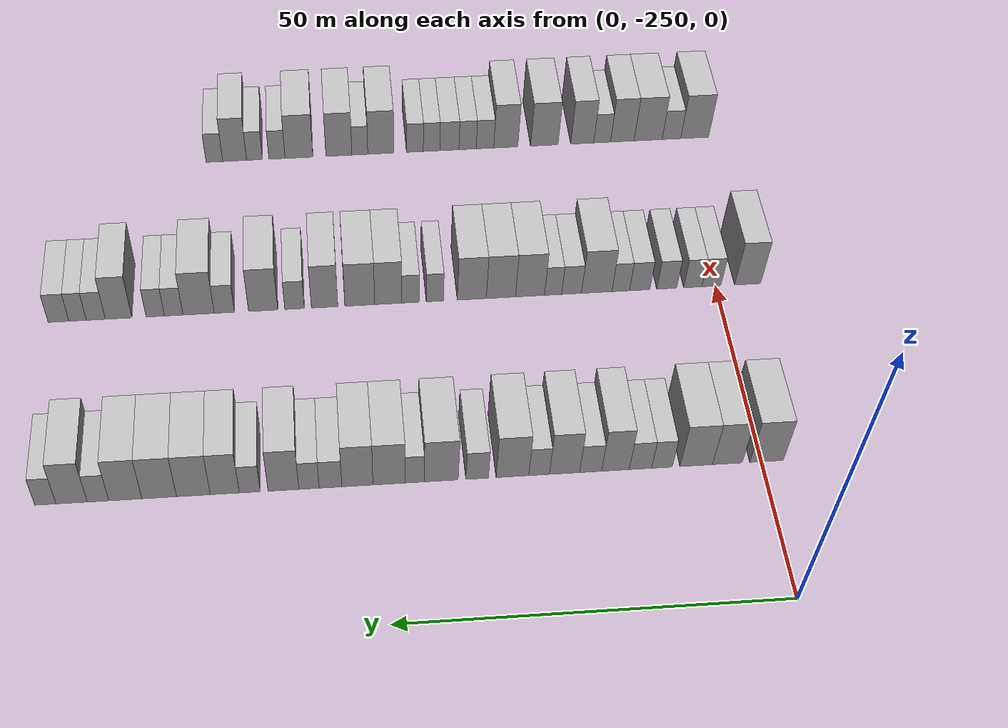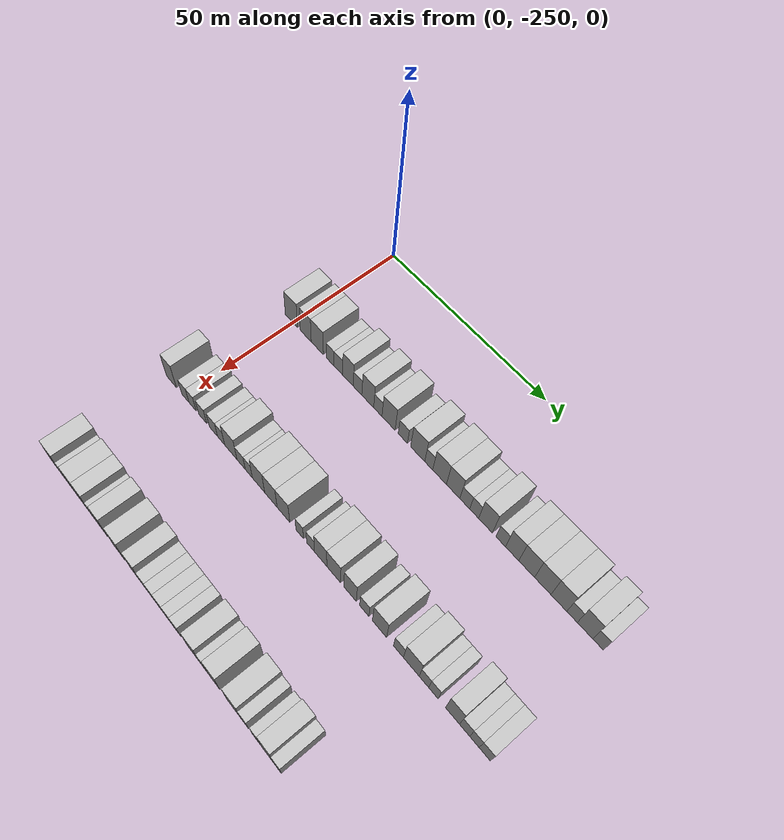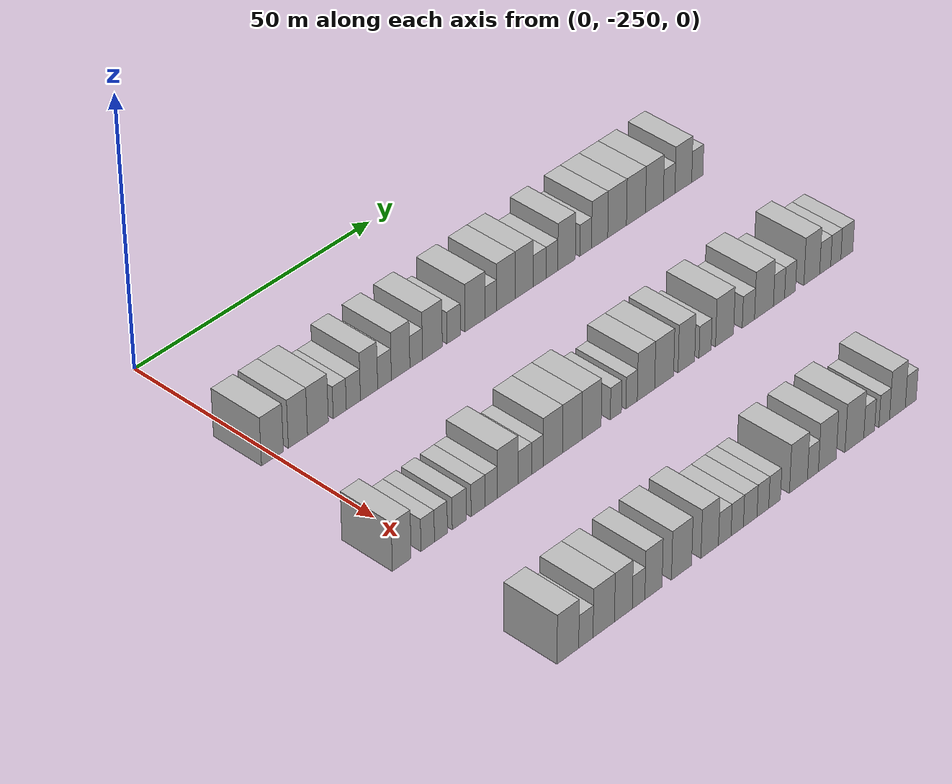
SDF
<sdf version="1.6">
 <world name="default">
  <model name="building_50">
   <static>1</static>
   <pose>25.0000 -250.6717 0 0.000000 0.000000 0.000000</pose>
   <link name="link">
    <pose>0 0 4.50 0 0 0</pose>
    <collision name="collision"><geometry><box><size>10.0000 4.4759 9.0000</size></box></geometry></collision>
    <visual name="visual">
     <cast_shadows>0</cast_shadows>
     <geometry><box><size>10.0000 4.4759 9.0000</size></box></geometry>
     <material>
      <script>
       <uri>model://HANNAS_wall/materials/scripts</uri>
       <uri>model://HANNAS_wall/materials/textures</uri>
       <name>vrc/HANNAS_wall</name>
      </script>
     </material>
    </visual>
   </link>
  </model>
  <model name="building_51">
   <static>1</static>
   <pose>25.0000 -245.4703 0 0.000000 0.000000 0.000000</pose>
   <link name="link">
    <pose>0 0 4.50 0 0 0</pose>
    <collision name="collision"><geometry><box><size>10.0000 3.9269 9.0000</size></box></geometry></collision>
    <visual name="visual">
     <cast_shadows>0</cast_shadows>
     <geometry><box><size>10.0000 3.9269 9.0000</size></box></geometry>
     <material>
      <script>
       <uri>model://HANNAS_wall/materials/scripts</uri>
       <uri>model://HANNAS_wall/materials/textures</uri>
       <name>vrc/HANNAS_wall</name>
      </script>
     </material>
    </visual>
   </link>
  </model>
  <model name="building_52">
   <static>1</static>
   <pose>25.0000 -241.3442 0 0.000000 0.000000 0.000000</pose>
   <link name="link">
    <pose>0 0 4.50 0 0 0</pose>
    <collision name="collision"><geometry><box><size>10.0000 4.3253 9.0000</size></box></geometry></collision>
    <visual name="visual">
     <cast_shadows>0</cast_shadows>
     <geometry><box><size>10.0000 4.3253 9.0000</size></box></geometry>
     <material>
      <script>
       <uri>model://HANNAS_wall/materials/scripts</uri>
       <uri>model://HANNAS_wall/materials/textures</uri>
       <name>vrc/HANNAS_wall</name>
      </script>
     </material>
    </visual>
   </link>
  </model>
  <model name="building_53">
   <static>1</static>
   <pose>25.0000 -236.8135 0 0.000000 0.000000 0.000000</pose>
   <link name="link">
    <pose>0 0 3.00 0 0 0</pose>
    <collision name="collision"><geometry><box><size>10.0000 2.7361 6.0000</size></box></geometry></collision>
    <visual name="visual">
     <cast_shadows>0</cast_shadows>
     <geometry><box><size>10.0000 2.7361 6.0000</size></box></geometry>
     <material>
      <script>
       <uri>model://HANNAS_wall/materials/scripts</uri>
       <uri>model://HANNAS_wall/materials/textures</uri>
       <name>vrc/HANNAS_wall</name>
      </script>
     </material>
    </visual>
   </link>
  </model>
  <model name="building_54">
   <static>1</static>
   <pose>25.0000 -233.9653 0 0.000000 0.000000 0.000000</pose>
   <link name="link">
    <pose>0 0 3.00 0 0 0</pose>
    <collision name="collision"><geometry><box><size>10.0000 2.9603 6.0000</size></box></geometry></collision>
    <visual name="visual">
     <cast_shadows>0</cast_shadows>
     <geometry><box><size>10.0000 2.9603 6.0000</size></box></geometry>
     <material>
      <script>
       <uri>model://HANNAS_wall/materials/scripts</uri>
       <uri>model://HANNAS_wall/materials/textures</uri>
       <name>vrc/HANNAS_wall</name>
      </script>
     </material>
    </visual>
   </link>
  </model>
  <model name="building_55">
   <static>1</static>
   <pose>25.0000 -230.6658 0 0.000000 0.000000 0.000000</pose>
   <link name="link">
    <pose>0 0 4.50 0 0 0</pose>
    <collision name="collision"><geometry><box><size>10.0000 3.6388 9.0000</size></box></geometry></collision>
    <visual name="visual">
     <cast_shadows>0</cast_shadows>
     <geometry><box><size>10.0000 3.6388 9.0000</size></box></geometry>
     <material>
      <script>
       <uri>model://HANNAS_wall/materials/scripts</uri>
       <uri>model://HANNAS_wall/materials/textures</uri>
       <name>vrc/HANNAS_wall</name>
      </script>
     </material>
    </visual>
   </link>
  </model>
  <model name="building_56">
   <static>1</static>
   <pose>25.0000 -227.3958 0 0.000000 0.000000 0.000000</pose>
   <link name="link">
    <pose>0 0 3.00 0 0 0</pose>
    <collision name="collision"><geometry><box><size>10.0000 2.9012 6.0000</size></box></geometry></collision>
    <visual name="visual">
     <cast_shadows>0</cast_shadows>
     <geometry><box><size>10.0000 2.9012 6.0000</size></box></geometry>
     <material>
      <script>
       <uri>model://HANNAS_wall/materials/scripts</uri>
       <uri>model://HANNAS_wall/materials/textures</uri>
       <name>vrc/HANNAS_wall</name>
      </script>
     </material>
    </visual>
   </link>
  </model>
  <model name="building_57">
   <static>1</static>
   <pose>25.0000 -223.9683 0 0.000000 0.000000 0.000000</pose>
   <link name="link">
    <pose>0 0 4.50 0 0 0</pose>
    <collision name="collision"><geometry><box><size>10.0000 3.9539 9.0000</size></box></geometry></collision>
    <visual name="visual">
     <cast_shadows>0</cast_shadows>
     <geometry><box><size>10.0000 3.9539 9.0000</size></box></geometry>
     <material>
      <script>
       <uri>model://HANNAS_wall/materials/scripts</uri>
       <uri>model://HANNAS_wall/materials/textures</uri>
       <name>vrc/HANNAS_wall</name>
      </script>
     </material>
    </visual>
   </link>
  </model>
  <model name="building_58">
   <static>1</static>
   <pose>25.0000 -220.6327 0 0.000000 0.000000 0.000000</pose>
   <link name="link">
    <pose>0 0 3.00 0 0 0</pose>
    <collision name="collision"><geometry><box><size>10.0000 2.7173 6.0000</size></box></geometry></collision>
    <visual name="visual">
     <cast_shadows>0</cast_shadows>
     <geometry><box><size>10.0000 2.7173 6.0000</size></box></geometry>
     <material>
      <script>
       <uri>model://HANNAS_wall/materials/scripts</uri>
       <uri>model://HANNAS_wall/materials/textures</uri>
       <name>vrc/HANNAS_wall</name>
      </script>
     </material>
    </visual>
   </link>
  </model>
  <model name="building_59">
   <static>1</static>
   <pose>25.0000 -217.1410 0 0.000000 0.000000 0.000000</pose>
   <link name="link">
    <pose>0 0 4.50 0 0 0</pose>
    <collision name="collision"><geometry><box><size>10.0000 4.2660 9.0000</size></box></geometry></collision>
    <visual name="visual">
     <cast_shadows>0</cast_shadows>
     <geometry><box><size>10.0000 4.2660 9.0000</size></box></geometry>
     <material>
      <script>
       <uri>model://HANNAS_wall/materials/scripts</uri>
       <uri>model://HANNAS_wall/materials/textures</uri>
       <name>vrc/HANNAS_wall</name>
      </script>
     </material>
    </visual>
   </link>
  </model>
  <model name="building_60">
   <static>1</static>
   <pose>25.0000 -212.5324 0 0.000000 0.000000 0.000000</pose>
   <link name="link">
    <pose>0 0 3.00 0 0 0</pose>
    <collision name="collision"><geometry><box><size>10.0000 2.9512 6.0000</size></box></geometry></collision>
    <visual name="visual">
     <cast_shadows>0</cast_shadows>
     <geometry><box><size>10.0000 2.9512 6.0000</size></box></geometry>
     <material>
      <script>
       <uri>model://HANNAS_wall/materials/scripts</uri>
       <uri>model://HANNAS_wall/materials/textures</uri>
       <name>vrc/HANNAS_wall</name>
      </script>
     </material>
    </visual>
   </link>
  </model>
  <model name="building_61">
   <static>1</static>
   <pose>25.0000 -207.8378 0 0.000000 0.000000 0.000000</pose>
   <link name="link">
    <pose>0 0 4.50 0 0 0</pose>
    <collision name="collision"><geometry><box><size>10.0000 4.4381 9.0000</size></box></geometry></collision>
    <visual name="visual">
     <cast_shadows>0</cast_shadows>
     <geometry><box><size>10.0000 4.4381 9.0000</size></box></geometry>
     <material>
      <script>
       <uri>model://HANNAS_wall/materials/scripts</uri>
       <uri>model://HANNAS_wall/materials/textures</uri>
       <name>vrc/HANNAS_wall</name>
      </script>
     </material>
    </visual>
   </link>
  </model>
  <model name="building_62">
   <static>1</static>
   <pose>25.0000 -204.3818 0 0.000000 0.000000 0.000000</pose>
   <link name="link">
    <pose>0 0 3.00 0 0 0</pose>
    <collision name="collision"><geometry><box><size>10.0000 2.4738 6.0000</size></box></geometry></collision>
    <visual name="visual">
     <cast_shadows>0</cast_shadows>
     <geometry><box><size>10.0000 2.4738 6.0000</size></box></geometry>
     <material>
      <script>
       <uri>model://HANNAS_wall/materials/scripts</uri>
       <uri>model://HANNAS_wall/materials/textures</uri>
       <name>vrc/HANNAS_wall</name>
      </script>
     </material>
    </visual>
   </link>
  </model>
  <model name="building_63">
   <static>1</static>
   <pose>25.0000 -201.0531 0 0.000000 0.000000 0.000000</pose>
   <link name="link">
    <pose>0 0 4.50 0 0 0</pose>
    <collision name="collision"><geometry><box><size>10.0000 4.1836 9.0000</size></box></geometry></collision>
    <visual name="visual">
     <cast_shadows>0</cast_shadows>
     <geometry><box><size>10.0000 4.1836 9.0000</size></box></geometry>
     <material>
      <script>
       <uri>model://HANNAS_wall/materials/scripts</uri>
       <uri>model://HANNAS_wall/materials/textures</uri>
       <name>vrc/HANNAS_wall</name>
      </script>
     </material>
    </visual>
   </link>
  </model>
  <model name="building_64">
   <static>1</static>
   <pose>25.0000 -196.9425 0 0.000000 0.000000 0.000000</pose>
   <link name="link">
    <pose>0 0 4.50 0 0 0</pose>
    <collision name="collision"><geometry><box><size>10.0000 4.0376 9.0000</size></box></geometry></collision>
    <visual name="visual">
     <cast_shadows>0</cast_shadows>
     <geometry><box><size>10.0000 4.0376 9.0000</size></box></geometry>
     <material>
      <script>
       <uri>model://HANNAS_wall/materials/scripts</uri>
       <uri>model://HANNAS_wall/materials/textures</uri>
       <name>vrc/HANNAS_wall</name>
      </script>
     </material>
    </visual>
   </link>
  </model>
  <model name="building_65">
   <static>1</static>
   <pose>25.0000 -193.4631 0 0.000000 0.000000 0.000000</pose>
   <link name="link">
    <pose>0 0 3.00 0 0 0</pose>
    <collision name="collision"><geometry><box><size>10.0000 2.9212 6.0000</size></box></geometry></collision>
    <visual name="visual">
     <cast_shadows>0</cast_shadows>
     <geometry><box><size>10.0000 2.9212 6.0000</size></box></geometry>
     <material>
      <script>
       <uri>model://HANNAS_wall/materials/scripts</uri>
       <uri>model://HANNAS_wall/materials/textures</uri>
       <name>vrc/HANNAS_wall</name>
      </script>
     </material>
    </visual>
   </link>
  </model>
  <model name="building_66">
   <static>1</static>
   <pose>25.0000 -190.6886 0 0.000000 0.000000 0.000000</pose>
   <link name="link">
    <pose>0 0 3.00 0 0 0</pose>
    <collision name="collision"><geometry><box><size>10.0000 2.6278 6.0000</size></box></geometry></collision>
    <visual name="visual">
     <cast_shadows>0</cast_shadows>
     <geometry><box><size>10.0000 2.6278 6.0000</size></box></geometry>
     <material>
      <script>
       <uri>model://HANNAS_wall/materials/scripts</uri>
       <uri>model://HANNAS_wall/materials/textures</uri>
       <name>vrc/HANNAS_wall</name>
      </script>
     </material>
    </visual>
   </link>
  </model>
  <model name="building_67">
   <static>1</static>
   <pose>25.0000 -187.3873 0 0.000000 0.000000 0.000000</pose>
   <link name="link">
    <pose>0 0 4.50 0 0 0</pose>
    <collision name="collision"><geometry><box><size>10.0000 3.9748 9.0000</size></box></geometry></collision>
    <visual name="visual">
     <cast_shadows>0</cast_shadows>
     <geometry><box><size>10.0000 3.9748 9.0000</size></box></geometry>
     <material>
      <script>
       <uri>model://HANNAS_wall/materials/scripts</uri>
       <uri>model://HANNAS_wall/materials/textures</uri>
       <name>vrc/HANNAS_wall</name>
      </script>
     </material>
    </visual>
   </link>
  </model>
  <model name="building_68">
   <static>1</static>
   <pose>25.0000 -183.0421 0 0.000000 0.000000 0.000000</pose>
   <link name="link">
    <pose>0 0 3.00 0 0 0</pose>
    <collision name="collision"><geometry><box><size>10.0000 2.7155 6.0000</size></box></geometry></collision>
    <visual name="visual">
     <cast_shadows>0</cast_shadows>
     <geometry><box><size>10.0000 2.7155 6.0000</size></box></geometry>
     <material>
      <script>
       <uri>model://HANNAS_wall/materials/scripts</uri>
       <uri>model://HANNAS_wall/materials/textures</uri>
       <name>vrc/HANNAS_wall</name>
      </script>
     </material>
    </visual>
   </link>
  </model>
  <model name="building_69">
   <static>1</static>
   <pose>25.0000 -179.8226 0 0.000000 0.000000 0.000000</pose>
   <link name="link">
    <pose>0 0 4.50 0 0 0</pose>
    <collision name="collision"><geometry><box><size>10.0000 3.7235 9.0000</size></box></geometry></collision>
    <visual name="visual">
     <cast_shadows>0</cast_shadows>
     <geometry><box><size>10.0000 3.7235 9.0000</size></box></geometry>
     <material>
      <script>
       <uri>model://HANNAS_wall/materials/scripts</uri>
       <uri>model://HANNAS_wall/materials/textures</uri>
       <name>vrc/HANNAS_wall</name>
      </script>
     </material>
    </visual>
   </link>
  </model>
  <model name="building_70">
   <static>1</static>
   <pose>25.0000 -175.7892 0 0.000000 0.000000 0.000000</pose>
   <link name="link">
    <pose>0 0 4.50 0 0 0</pose>
    <collision name="collision"><geometry><box><size>10.0000 4.3433 9.0000</size></box></geometry></collision>
    <visual name="visual">
     <cast_shadows>0</cast_shadows>
     <geometry><box><size>10.0000 4.3433 9.0000</size></box></geometry>
     <material>
      <script>
       <uri>model://HANNAS_wall/materials/scripts</uri>
       <uri>model://HANNAS_wall/materials/textures</uri>
       <name>vrc/HANNAS_wall</name>
      </script>
     </material>
    </visual>
   </link>
  </model>
  <model name="building_71">
   <static>1</static>
   <pose>25.0000 -171.4000 0 0.000000 0.000000 0.000000</pose>
   <link name="link">
    <pose>0 0 4.50 0 0 0</pose>
    <collision name="collision"><geometry><box><size>10.0000 4.4351 9.0000</size></box></geometry></collision>
    <visual name="visual">
     <cast_shadows>0</cast_shadows>
     <geometry><box><size>10.0000 4.4351 9.0000</size></box></geometry>
     <material>
      <script>
       <uri>model://HANNAS_wall/materials/scripts</uri>
       <uri>model://HANNAS_wall/materials/textures</uri>
       <name>vrc/HANNAS_wall</name>
      </script>
     </material>
    </visual>
   </link>
  </model>
  <model name="building_72">
   <static>1</static>
   <pose>25.0000 -167.0664 0 0.000000 0.000000 0.000000</pose>
   <link name="link">
    <pose>0 0 4.50 0 0 0</pose>
    <collision name="collision"><geometry><box><size>10.0000 4.2321 9.0000</size></box></geometry></collision>
    <visual name="visual">
     <cast_shadows>0</cast_shadows>
     <geometry><box><size>10.0000 4.2321 9.0000</size></box></geometry>
     <material>
      <script>
       <uri>model://HANNAS_wall/materials/scripts</uri>
       <uri>model://HANNAS_wall/materials/textures</uri>
       <name>vrc/HANNAS_wall</name>
      </script>
     </material>
    </visual>
   </link>
  </model>
  <model name="building_73">
   <static>1</static>
   <pose>25.0000 -163.5748 0 0.000000 0.000000 0.000000</pose>
   <link name="link">
    <pose>0 0 3.00 0 0 0</pose>
    <collision name="collision"><geometry><box><size>10.0000 2.7511 6.0000</size></box></geometry></collision>
    <visual name="visual">
     <cast_shadows>0</cast_shadows>
     <geometry><box><size>10.0000 2.7511 6.0000</size></box></geometry>
     <material>
      <script>
       <uri>model://HANNAS_wall/materials/scripts</uri>
       <uri>model://HANNAS_wall/materials/textures</uri>
       <name>vrc/HANNAS_wall</name>
      </script>
     </material>
    </visual>
   </link>
  </model>
  <model name="building_74">
   <static>1</static>
   <pose>25.0000 -160.2046 0 0.000000 0.000000 0.000000</pose>
   <link name="link">
    <pose>0 0 4.50 0 0 0</pose>
    <collision name="collision"><geometry><box><size>10.0000 3.9891 9.0000</size></box></geometry></collision>
    <visual name="visual">
     <cast_shadows>0</cast_shadows>
     <geometry><box><size>10.0000 3.9891 9.0000</size></box></geometry>
     <material>
      <script>
       <uri>model://HANNAS_wall/materials/scripts</uri>
       <uri>model://HANNAS_wall/materials/textures</uri>
       <name>vrc/HANNAS_wall</name>
      </script>
     </material>
    </visual>
   </link>
  </model>
  <model name="building_75">
   <static>1</static>
   <pose>25.0000 -156.8636 0 0.000000 0.000000 0.000000</pose>
   <link name="link">
    <pose>0 0 3.00 0 0 0</pose>
    <collision name="collision"><geometry><box><size>10.0000 2.6929 6.0000</size></box></geometry></collision>
    <visual name="visual">
     <cast_shadows>0</cast_shadows>
     <geometry><box><size>10.0000 2.6929 6.0000</size></box></geometry>
     <material>
      <script>
       <uri>model://HANNAS_wall/materials/scripts</uri>
       <uri>model://HANNAS_wall/materials/textures</uri>
       <name>vrc/HANNAS_wall</name>
      </script>
     </material>
    </visual>
   </link>
  </model>
  <model name="building_287">
   <static>1</static>
   <pose>55.0000 -254.6625 0 0.000000 0.000000 0.000000</pose>
   <link name="link">
    <pose>0 0 4.50 0 0 0</pose>
    <collision name="collision"><geometry><box><size>10.0000 3.7962 9.0000</size></box></geometry></collision>
    <visual name="visual">
     <cast_shadows>0</cast_shadows>
     <geometry><box><size>10.0000 3.7962 9.0000</size></box></geometry>
     <material>
      <script>
       <uri>model://HANNAS_wall/materials/scripts</uri>
       <uri>model://HANNAS_wall/materials/textures</uri>
       <name>vrc/HANNAS_wall</name>
      </script>
     </material>
    </visual>
   </link>
  </model>
  <model name="building_288">
   <static>1</static>
   <pose>55.0000 -249.3852 0 0.000000 0.000000 0.000000</pose>
   <link name="link">
    <pose>0 0 3.00 0 0 0</pose>
    <collision name="collision"><geometry><box><size>10.0000 2.7585 6.0000</size></box></geometry></collision>
    <visual name="visual">
     <cast_shadows>0</cast_shadows>
     <geometry><box><size>10.0000 2.7585 6.0000</size></box></geometry>
     <material>
      <script>
       <uri>model://HANNAS_wall/materials/scripts</uri>
       <uri>model://HANNAS_wall/materials/textures</uri>
       <name>vrc/HANNAS_wall</name>
      </script>
     </material>
    </visual>
   </link>
  </model>
  <model name="building_289">
   <static>1</static>
   <pose>55.0000 -246.6740 0 0.000000 0.000000 0.000000</pose>
   <link name="link">
    <pose>0 0 3.00 0 0 0</pose>
    <collision name="collision"><geometry><box><size>10.0000 2.6638 6.0000</size></box></geometry></collision>
    <visual name="visual">
     <cast_shadows>0</cast_shadows>
     <geometry><box><size>10.0000 2.6638 6.0000</size></box></geometry>
     <material>
      <script>
       <uri>model://HANNAS_wall/materials/scripts</uri>
       <uri>model://HANNAS_wall/materials/textures</uri>
       <name>vrc/HANNAS_wall</name>
      </script>
     </material>
    </visual>
   </link>
  </model>
  <model name="building_290">
   <static>1</static>
   <pose>55.0000 -242.8928 0 0.000000 0.000000 0.000000</pose>
   <link name="link">
    <pose>0 0 3.00 0 0 0</pose>
    <collision name="collision"><geometry><box><size>10.0000 2.8986 6.0000</size></box></geometry></collision>
    <visual name="visual">
     <cast_shadows>0</cast_shadows>
     <geometry><box><size>10.0000 2.8986 6.0000</size></box></geometry>
     <material>
      <script>
       <uri>model://HANNAS_wall/materials/scripts</uri>
       <uri>model://HANNAS_wall/materials/textures</uri>
       <name>vrc/HANNAS_wall</name>
      </script>
     </material>
    </visual>
   </link>
  </model>
  <model name="building_291">
   <static>1</static>
   <pose>55.0000 -238.9774 0 0.000000 0.000000 0.000000</pose>
   <link name="link">
    <pose>0 0 3.00 0 0 0</pose>
    <collision name="collision"><geometry><box><size>10.0000 2.9320 6.0000</size></box></geometry></collision>
    <visual name="visual">
     <cast_shadows>0</cast_shadows>
     <geometry><box><size>10.0000 2.9320 6.0000</size></box></geometry>
     <material>
      <script>
       <uri>model://HANNAS_wall/materials/scripts</uri>
       <uri>model://HANNAS_wall/materials/textures</uri>
       <name>vrc/HANNAS_wall</name>
      </script>
     </material>
    </visual>
   </link>
  </model>
  <model name="building_292">
   <static>1</static>
   <pose>55.0000 -236.2379 0 0.000000 0.000000 0.000000</pose>
   <link name="link">
    <pose>0 0 3.00 0 0 0</pose>
    <collision name="collision"><geometry><box><size>10.0000 2.5470 6.0000</size></box></geometry></collision>
    <visual name="visual">
     <cast_shadows>0</cast_shadows>
     <geometry><box><size>10.0000 2.5470 6.0000</size></box></geometry>
     <material>
      <script>
       <uri>model://HANNAS_wall/materials/scripts</uri>
       <uri>model://HANNAS_wall/materials/textures</uri>
       <name>vrc/HANNAS_wall</name>
      </script>
     </material>
    </visual>
   </link>
  </model>
  <model name="building_293">
   <static>1</static>
   <pose>55.0000 -232.7676 0 0.000000 0.000000 0.000000</pose>
   <link name="link">
    <pose>0 0 4.50 0 0 0</pose>
    <collision name="collision"><geometry><box><size>10.0000 4.3937 9.0000</size></box></geometry></collision>
    <visual name="visual">
     <cast_shadows>0</cast_shadows>
     <geometry><box><size>10.0000 4.3937 9.0000</size></box></geometry>
     <material>
      <script>
       <uri>model://HANNAS_wall/materials/scripts</uri>
       <uri>model://HANNAS_wall/materials/textures</uri>
       <name>vrc/HANNAS_wall</name>
      </script>
     </material>
    </visual>
   </link>
  </model>
  <model name="building_294">
   <static>1</static>
   <pose>55.0000 -229.1363 0 0.000000 0.000000 0.000000</pose>
   <link name="link">
    <pose>0 0 3.00 0 0 0</pose>
    <collision name="collision"><geometry><box><size>10.0000 2.8690 6.0000</size></box></geometry></collision>
    <visual name="visual">
     <cast_shadows>0</cast_shadows>
     <geometry><box><size>10.0000 2.8690 6.0000</size></box></geometry>
     <material>
      <script>
       <uri>model://HANNAS_wall/materials/scripts</uri>
       <uri>model://HANNAS_wall/materials/textures</uri>
       <name>vrc/HANNAS_wall</name>
      </script>
     </material>
    </visual>
   </link>
  </model>
  <model name="building_295">
   <static>1</static>
   <pose>55.0000 -226.4690 0 0.000000 0.000000 0.000000</pose>
   <link name="link">
    <pose>0 0 3.00 0 0 0</pose>
    <collision name="collision"><geometry><box><size>10.0000 2.4657 6.0000</size></box></geometry></collision>
    <visual name="visual">
     <cast_shadows>0</cast_shadows>
     <geometry><box><size>10.0000 2.4657 6.0000</size></box></geometry>
     <material>
      <script>
       <uri>model://HANNAS_wall/materials/scripts</uri>
       <uri>model://HANNAS_wall/materials/textures</uri>
       <name>vrc/HANNAS_wall</name>
      </script>
     </material>
    </visual>
   </link>
  </model>
  <model name="building_296">
   <static>1</static>
   <pose>55.0000 -223.1449 0 0.000000 0.000000 0.000000</pose>
   <link name="link">
    <pose>0 0 4.50 0 0 0</pose>
    <collision name="collision"><geometry><box><size>10.0000 4.1826 9.0000</size></box></geometry></collision>
    <visual name="visual">
     <cast_shadows>0</cast_shadows>
     <geometry><box><size>10.0000 4.1826 9.0000</size></box></geometry>
     <material>
      <script>
       <uri>model://HANNAS_wall/materials/scripts</uri>
       <uri>model://HANNAS_wall/materials/textures</uri>
       <name>vrc/HANNAS_wall</name>
      </script>
     </material>
    </visual>
   </link>
  </model>
  <model name="building_297">
   <static>1</static>
   <pose>55.0000 -218.9643 0 0.000000 0.000000 0.000000</pose>
   <link name="link">
    <pose>0 0 4.50 0 0 0</pose>
    <collision name="collision"><geometry><box><size>10.0000 4.1785 9.0000</size></box></geometry></collision>
    <visual name="visual">
     <cast_shadows>0</cast_shadows>
     <geometry><box><size>10.0000 4.1785 9.0000</size></box></geometry>
     <material>
      <script>
       <uri>model://HANNAS_wall/materials/scripts</uri>
       <uri>model://HANNAS_wall/materials/textures</uri>
       <name>vrc/HANNAS_wall</name>
      </script>
     </material>
    </visual>
   </link>
  </model>
  <model name="building_298">
   <static>1</static>
   <pose>55.0000 -214.7908 0 0.000000 0.000000 0.000000</pose>
   <link name="link">
    <pose>0 0 4.50 0 0 0</pose>
    <collision name="collision"><geometry><box><size>10.0000 4.1686 9.0000</size></box></geometry></collision>
    <visual name="visual">
     <cast_shadows>0</cast_shadows>
     <geometry><box><size>10.0000 4.1686 9.0000</size></box></geometry>
     <material>
      <script>
       <uri>model://HANNAS_wall/materials/scripts</uri>
       <uri>model://HANNAS_wall/materials/textures</uri>
       <name>vrc/HANNAS_wall</name>
      </script>
     </material>
    </visual>
   </link>
  </model>
  <model name="building_299">
   <static>1</static>
   <pose>55.0000 -209.4850 0 0.000000 0.000000 0.000000</pose>
   <link name="link">
    <pose>0 0 3.00 0 0 0</pose>
    <collision name="collision"><geometry><box><size>10.0000 2.4429 6.0000</size></box></geometry></collision>
    <visual name="visual">
     <cast_shadows>0</cast_shadows>
     <geometry><box><size>10.0000 2.4429 6.0000</size></box></geometry>
     <material>
      <script>
       <uri>model://HANNAS_wall/materials/scripts</uri>
       <uri>model://HANNAS_wall/materials/textures</uri>
       <name>vrc/HANNAS_wall</name>
      </script>
     </material>
    </visual>
   </link>
  </model>
  <model name="building_300">
   <static>1</static>
   <pose>55.0000 -206.0177 0 0.000000 0.000000 0.000000</pose>
   <link name="link">
    <pose>0 0 3.00 0 0 0</pose>
    <collision name="collision"><geometry><box><size>10.0000 2.4918 6.0000</size></box></geometry></collision>
    <visual name="visual">
     <cast_shadows>0</cast_shadows>
     <geometry><box><size>10.0000 2.4918 6.0000</size></box></geometry>
     <material>
      <script>
       <uri>model://HANNAS_wall/materials/scripts</uri>
       <uri>model://HANNAS_wall/materials/textures</uri>
       <name>vrc/HANNAS_wall</name>
      </script>
     </material>
    </visual>
   </link>
  </model>
  <model name="building_301">
   <static>1</static>
   <pose>55.0000 -202.8370 0 0.000000 0.000000 0.000000</pose>
   <link name="link">
    <pose>0 0 4.50 0 0 0</pose>
    <collision name="collision"><geometry><box><size>10.0000 3.8696 9.0000</size></box></geometry></collision>
    <visual name="visual">
     <cast_shadows>0</cast_shadows>
     <geometry><box><size>10.0000 3.8696 9.0000</size></box></geometry>
     <material>
      <script>
       <uri>model://HANNAS_wall/materials/scripts</uri>
       <uri>model://HANNAS_wall/materials/textures</uri>
       <name>vrc/HANNAS_wall</name>
      </script>
     </material>
    </visual>
   </link>
  </model>
  <model name="building_302">
   <static>1</static>
   <pose>55.0000 -198.7767 0 0.000000 0.000000 0.000000</pose>
   <link name="link">
    <pose>0 0 4.50 0 0 0</pose>
    <collision name="collision"><geometry><box><size>10.0000 4.2511 9.0000</size></box></geometry></collision>
    <visual name="visual">
     <cast_shadows>0</cast_shadows>
     <geometry><box><size>10.0000 4.2511 9.0000</size></box></geometry>
     <material>
      <script>
       <uri>model://HANNAS_wall/materials/scripts</uri>
       <uri>model://HANNAS_wall/materials/textures</uri>
       <name>vrc/HANNAS_wall</name>
      </script>
     </material>
    </visual>
   </link>
  </model>
  <model name="building_303">
   <static>1</static>
   <pose>55.0000 -193.7734 0 0.000000 0.000000 0.000000</pose>
   <link name="link">
    <pose>0 0 4.50 0 0 0</pose>
    <collision name="collision"><geometry><box><size>10.0000 3.7554 9.0000</size></box></geometry></collision>
    <visual name="visual">
     <cast_shadows>0</cast_shadows>
     <geometry><box><size>10.0000 3.7554 9.0000</size></box></geometry>
     <material>
      <script>
       <uri>model://HANNAS_wall/materials/scripts</uri>
       <uri>model://HANNAS_wall/materials/textures</uri>
       <name>vrc/HANNAS_wall</name>
      </script>
     </material>
    </visual>
   </link>
  </model>
  <model name="building_304">
   <static>1</static>
   <pose>55.0000 -189.5128 0 0.000000 0.000000 0.000000</pose>
   <link name="link">
    <pose>0 0 3.00 0 0 0</pose>
    <collision name="collision"><geometry><box><size>10.0000 2.7659 6.0000</size></box></geometry></collision>
    <visual name="visual">
     <cast_shadows>0</cast_shadows>
     <geometry><box><size>10.0000 2.7659 6.0000</size></box></geometry>
     <material>
      <script>
       <uri>model://HANNAS_wall/materials/scripts</uri>
       <uri>model://HANNAS_wall/materials/textures</uri>
       <name>vrc/HANNAS_wall</name>
      </script>
     </material>
    </visual>
   </link>
  </model>
  <model name="building_305">
   <static>1</static>
   <pose>55.0000 -185.0582 0 0.000000 0.000000 0.000000</pose>
   <link name="link">
    <pose>0 0 4.50 0 0 0</pose>
    <collision name="collision"><geometry><box><size>10.0000 4.1434 9.0000</size></box></geometry></collision>
    <visual name="visual">
     <cast_shadows>0</cast_shadows>
     <geometry><box><size>10.0000 4.1434 9.0000</size></box></geometry>
     <material>
      <script>
       <uri>model://HANNAS_wall/materials/scripts</uri>
       <uri>model://HANNAS_wall/materials/textures</uri>
       <name>vrc/HANNAS_wall</name>
      </script>
     </material>
    </visual>
   </link>
  </model>
  <model name="building_306">
   <static>1</static>
   <pose>55.0000 -179.5613 0 0.000000 0.000000 0.000000</pose>
   <link name="link">
    <pose>0 0 3.00 0 0 0</pose>
    <collision name="collision"><geometry><box><size>10.0000 2.8503 6.0000</size></box></geometry></collision>
    <visual name="visual">
     <cast_shadows>0</cast_shadows>
     <geometry><box><size>10.0000 2.8503 6.0000</size></box></geometry>
     <material>
      <script>
       <uri>model://HANNAS_wall/materials/scripts</uri>
       <uri>model://HANNAS_wall/materials/textures</uri>
       <name>vrc/HANNAS_wall</name>
      </script>
     </material>
    </visual>
   </link>
  </model>
  <model name="building_307">
   <static>1</static>
   <pose>55.0000 -175.9317 0 0.000000 0.000000 0.000000</pose>
   <link name="link">
    <pose>0 0 4.50 0 0 0</pose>
    <collision name="collision"><geometry><box><size>10.0000 4.4088 9.0000</size></box></geometry></collision>
    <visual name="visual">
     <cast_shadows>0</cast_shadows>
     <geometry><box><size>10.0000 4.4088 9.0000</size></box></geometry>
     <material>
      <script>
       <uri>model://HANNAS_wall/materials/scripts</uri>
       <uri>model://HANNAS_wall/materials/textures</uri>
       <name>vrc/HANNAS_wall</name>
      </script>
     </material>
    </visual>
   </link>
  </model>
  <model name="building_308">
   <static>1</static>
   <pose>55.0000 -172.4152 0 0.000000 0.000000 0.000000</pose>
   <link name="link">
    <pose>0 0 3.00 0 0 0</pose>
    <collision name="collision"><geometry><box><size>10.0000 2.6242 6.0000</size></box></geometry></collision>
    <visual name="visual">
     <cast_shadows>0</cast_shadows>
     <geometry><box><size>10.0000 2.6242 6.0000</size></box></geometry>
     <material>
      <script>
       <uri>model://HANNAS_wall/materials/scripts</uri>
       <uri>model://HANNAS_wall/materials/textures</uri>
       <name>vrc/HANNAS_wall</name>
      </script>
     </material>
    </visual>
   </link>
  </model>
  <model name="building_309">
   <static>1</static>
   <pose>55.0000 -169.8209 0 0.000000 0.000000 0.000000</pose>
   <link name="link">
    <pose>0 0 3.00 0 0 0</pose>
    <collision name="collision"><geometry><box><size>10.0000 2.5645 6.0000</size></box></geometry></collision>
    <visual name="visual">
     <cast_shadows>0</cast_shadows>
     <geometry><box><size>10.0000 2.5645 6.0000</size></box></geometry>
     <material>
      <script>
       <uri>model://HANNAS_wall/materials/scripts</uri>
       <uri>model://HANNAS_wall/materials/textures</uri>
       <name>vrc/HANNAS_wall</name>
      </script>
     </material>
    </visual>
   </link>
  </model>
  <model name="building_310">
   <static>1</static>
   <pose>55.0000 -164.6663 0 0.000000 0.000000 0.000000</pose>
   <link name="link">
    <pose>0 0 4.50 0 0 0</pose>
    <collision name="collision"><geometry><box><size>10.0000 3.7447 9.0000</size></box></geometry></collision>
    <visual name="visual">
     <cast_shadows>0</cast_shadows>
     <geometry><box><size>10.0000 3.7447 9.0000</size></box></geometry>
     <material>
      <script>
       <uri>model://HANNAS_wall/materials/scripts</uri>
       <uri>model://HANNAS_wall/materials/textures</uri>
       <name>vrc/HANNAS_wall</name>
      </script>
     </material>
    </visual>
   </link>
  </model>
  <model name="building_311">
   <static>1</static>
   <pose>55.0000 -161.4655 0 0.000000 0.000000 0.000000</pose>
   <link name="link">
    <pose>0 0 3.00 0 0 0</pose>
    <collision name="collision"><geometry><box><size>10.0000 2.6568 6.0000</size></box></geometry></collision>
    <visual name="visual">
     <cast_shadows>0</cast_shadows>
     <geometry><box><size>10.0000 2.6568 6.0000</size></box></geometry>
     <material>
      <script>
       <uri>model://HANNAS_wall/materials/scripts</uri>
       <uri>model://HANNAS_wall/materials/textures</uri>
       <name>vrc/HANNAS_wall</name>
      </script>
     </material>
    </visual>
   </link>
  </model>
  <model name="building_312">
   <static>1</static>
   <pose>55.0000 -158.9151 0 0.000000 0.000000 0.000000</pose>
   <link name="link">
    <pose>0 0 3.00 0 0 0</pose>
    <collision name="collision"><geometry><box><size>10.0000 2.4441 6.0000</size></box></geometry></collision>
    <visual name="visual">
     <cast_shadows>0</cast_shadows>
     <geometry><box><size>10.0000 2.4441 6.0000</size></box></geometry>
     <material>
      <script>
       <uri>model://HANNAS_wall/materials/scripts</uri>
       <uri>model://HANNAS_wall/materials/textures</uri>
       <name>vrc/HANNAS_wall</name>
      </script>
     </material>
    </visual>
   </link>
  </model>
  <model name="building_313">
   <static>1</static>
   <pose>55.0000 -156.2437 0 0.000000 0.000000 0.000000</pose>
   <link name="link">
    <pose>0 0 3.00 0 0 0</pose>
    <collision name="collision"><geometry><box><size>10.0000 2.8986 6.0000</size></box></geometry></collision>
    <visual name="visual">
     <cast_shadows>0</cast_shadows>
     <geometry><box><size>10.0000 2.8986 6.0000</size></box></geometry>
     <material>
      <script>
       <uri>model://HANNAS_wall/materials/scripts</uri>
       <uri>model://HANNAS_wall/materials/textures</uri>
       <name>vrc/HANNAS_wall</name>
      </script>
     </material>
    </visual>
   </link>
  </model>
  <model name="building_497">
   <static>1</static>
   <pose>85.0000 -252.7691 0 0.000000 0.000000 0.000000</pose>
   <link name="link">
    <pose>0 0 4.50 0 0 0</pose>
    <collision name="collision"><geometry><box><size>10.0000 4.4157 9.0000</size></box></geometry></collision>
    <visual name="visual">
     <cast_shadows>0</cast_shadows>
     <geometry><box><size>10.0000 4.4157 9.0000</size></box></geometry>
     <material>
      <script>
       <uri>model://HANNAS_wall/materials/scripts</uri>
       <uri>model://HANNAS_wall/materials/textures</uri>
       <name>vrc/HANNAS_wall</name>
      </script>
     </material>
    </visual>
   </link>
  </model>
  <model name="building_498">
   <static>1</static>
   <pose>85.0000 -249.0929 0 0.000000 0.000000 0.000000</pose>
   <link name="link">
    <pose>0 0 3.00 0 0 0</pose>
    <collision name="collision"><geometry><box><size>10.0000 2.9367 6.0000</size></box></geometry></collision>
    <visual name="visual">
     <cast_shadows>0</cast_shadows>
     <geometry><box><size>10.0000 2.9367 6.0000</size></box></geometry>
     <material>
      <script>
       <uri>model://HANNAS_wall/materials/scripts</uri>
       <uri>model://HANNAS_wall/materials/textures</uri>
       <name>vrc/HANNAS_wall</name>
      </script>
     </material>
    </visual>
   </link>
  </model>
  <model name="building_499">
   <static>1</static>
   <pose>85.0000 -245.4123 0 0.000000 0.000000 0.000000</pose>
   <link name="link">
    <pose>0 0 4.50 0 0 0</pose>
    <collision name="collision"><geometry><box><size>10.0000 4.4244 9.0000</size></box></geometry></collision>
    <visual name="visual">
     <cast_shadows>0</cast_shadows>
     <geometry><box><size>10.0000 4.4244 9.0000</size></box></geometry>
     <material>
      <script>
       <uri>model://HANNAS_wall/materials/scripts</uri>
       <uri>model://HANNAS_wall/materials/textures</uri>
       <name>vrc/HANNAS_wall</name>
      </script>
     </material>
    </visual>
   </link>
  </model>
  <model name="building_500">
   <static>1</static>
   <pose>85.0000 -241.3459 0 0.000000 0.000000 0.000000</pose>
   <link name="link">
    <pose>0 0 4.50 0 0 0</pose>
    <collision name="collision"><geometry><box><size>10.0000 3.7085 9.0000</size></box></geometry></collision>
    <visual name="visual">
     <cast_shadows>0</cast_shadows>
     <geometry><box><size>10.0000 3.7085 9.0000</size></box></geometry>
     <material>
      <script>
       <uri>model://HANNAS_wall/materials/scripts</uri>
       <uri>model://HANNAS_wall/materials/textures</uri>
       <name>vrc/HANNAS_wall</name>
      </script>
     </material>
    </visual>
   </link>
  </model>
  <model name="building_501">
   <static>1</static>
   <pose>85.0000 -238.1712 0 0.000000 0.000000 0.000000</pose>
   <link name="link">
    <pose>0 0 3.00 0 0 0</pose>
    <collision name="collision"><geometry><box><size>10.0000 2.6410 6.0000</size></box></geometry></collision>
    <visual name="visual">
     <cast_shadows>0</cast_shadows>
     <geometry><box><size>10.0000 2.6410 6.0000</size></box></geometry>
     <material>
      <script>
       <uri>model://HANNAS_wall/materials/scripts</uri>
       <uri>model://HANNAS_wall/materials/textures</uri>
       <name>vrc/HANNAS_wall</name>
      </script>
     </material>
    </visual>
   </link>
  </model>
  <model name="building_502">
   <static>1</static>
   <pose>85.0000 -235.0406 0 0.000000 0.000000 0.000000</pose>
   <link name="link">
    <pose>0 0 4.50 0 0 0</pose>
    <collision name="collision"><geometry><box><size>10.0000 3.6202 9.0000</size></box></geometry></collision>
    <visual name="visual">
     <cast_shadows>0</cast_shadows>
     <geometry><box><size>10.0000 3.6202 9.0000</size></box></geometry>
     <material>
      <script>
       <uri>model://HANNAS_wall/materials/scripts</uri>
       <uri>model://HANNAS_wall/materials/textures</uri>
       <name>vrc/HANNAS_wall</name>
      </script>
     </material>
    </visual>
   </link>
  </model>
  <model name="building_503">
   <static>1</static>
   <pose>85.0000 -229.0815 0 0.000000 0.000000 0.000000</pose>
   <link name="link">
    <pose>0 0 4.50 0 0 0</pose>
    <collision name="collision"><geometry><box><size>10.0000 4.2980 9.0000</size></box></geometry></collision>
    <visual name="visual">
     <cast_shadows>0</cast_shadows>
     <geometry><box><size>10.0000 4.2980 9.0000</size></box></geometry>
     <material>
      <script>
       <uri>model://HANNAS_wall/materials/scripts</uri>
       <uri>model://HANNAS_wall/materials/textures</uri>
       <name>vrc/HANNAS_wall</name>
      </script>
     </material>
    </visual>
   </link>
  </model>
  <model name="building_504">
   <static>1</static>
   <pose>85.0000 -223.0475 0 0.000000 0.000000 0.000000</pose>
   <link name="link">
    <pose>0 0 4.50 0 0 0</pose>
    <collision name="collision"><geometry><box><size>10.0000 3.7699 9.0000</size></box></geometry></collision>
    <visual name="visual">
     <cast_shadows>0</cast_shadows>
     <geometry><box><size>10.0000 3.7699 9.0000</size></box></geometry>
     <material>
      <script>
       <uri>model://HANNAS_wall/materials/scripts</uri>
       <uri>model://HANNAS_wall/materials/textures</uri>
       <name>vrc/HANNAS_wall</name>
      </script>
     </material>
    </visual>
   </link>
  </model>
  <model name="building_505">
   <static>1</static>
   <pose>85.0000 -219.7902 0 0.000000 0.000000 0.000000</pose>
   <link name="link">
    <pose>0 0 3.00 0 0 0</pose>
    <collision name="collision"><geometry><box><size>10.0000 2.7448 6.0000</size></box></geometry></collision>
    <visual name="visual">
     <cast_shadows>0</cast_shadows>
     <geometry><box><size>10.0000 2.7448 6.0000</size></box></geometry>
     <material>
      <script>
       <uri>model://HANNAS_wall/materials/scripts</uri>
       <uri>model://HANNAS_wall/materials/textures</uri>
       <name>vrc/HANNAS_wall</name>
      </script>
     </material>
    </visual>
   </link>
  </model>
  <model name="building_506">
   <static>1</static>
   <pose>85.0000 -217.0683 0 0.000000 0.000000 0.000000</pose>
   <link name="link">
    <pose>0 0 3.00 0 0 0</pose>
    <collision name="collision"><geometry><box><size>10.0000 2.6990 6.0000</size></box></geometry></collision>
    <visual name="visual">
     <cast_shadows>0</cast_shadows>
     <geometry><box><size>10.0000 2.6990 6.0000</size></box></geometry>
     <material>
      <script>
       <uri>model://HANNAS_wall/materials/scripts</uri>
       <uri>model://HANNAS_wall/materials/textures</uri>
       <name>vrc/HANNAS_wall</name>
      </script>
     </material>
    </visual>
   </link>
  </model>
  <model name="building_507">
   <static>1</static>
   <pose>85.0000 -214.2284 0 0.000000 0.000000 0.000000</pose>
   <link name="link">
    <pose>0 0 3.00 0 0 0</pose>
    <collision name="collision"><geometry><box><size>10.0000 2.9809 6.0000</size></box></geometry></collision>
    <visual name="visual">
     <cast_shadows>0</cast_shadows>
     <geometry><box><size>10.0000 2.9809 6.0000</size></box></geometry>
     <material>
      <script>
       <uri>model://HANNAS_wall/materials/scripts</uri>
       <uri>model://HANNAS_wall/materials/textures</uri>
       <name>vrc/HANNAS_wall</name>
      </script>
     </material>
    </visual>
   </link>
  </model>
  <model name="building_508">
   <static>1</static>
   <pose>85.0000 -211.4471 0 0.000000 0.000000 0.000000</pose>
   <link name="link">
    <pose>0 0 3.00 0 0 0</pose>
    <collision name="collision"><geometry><box><size>10.0000 2.5818 6.0000</size></box></geometry></collision>
    <visual name="visual">
     <cast_shadows>0</cast_shadows>
     <geometry><box><size>10.0000 2.5818 6.0000</size></box></geometry>
     <material>
      <script>
       <uri>model://HANNAS_wall/materials/scripts</uri>
       <uri>model://HANNAS_wall/materials/textures</uri>
       <name>vrc/HANNAS_wall</name>
      </script>
     </material>
    </visual>
   </link>
  </model>
  <model name="building_509">
   <static>1</static>
   <pose>85.0000 -208.8584 0 0.000000 0.000000 0.000000</pose>
   <link name="link">
    <pose>0 0 3.00 0 0 0</pose>
    <collision name="collision"><geometry><box><size>10.0000 2.5956 6.0000</size></box></geometry></collision>
    <visual name="visual">
     <cast_shadows>0</cast_shadows>
     <geometry><box><size>10.0000 2.5956 6.0000</size></box></geometry>
     <material>
      <script>
       <uri>model://HANNAS_wall/materials/scripts</uri>
       <uri>model://HANNAS_wall/materials/textures</uri>
       <name>vrc/HANNAS_wall</name>
      </script>
     </material>
    </visual>
   </link>
  </model>
  <model name="building_510">
   <static>1</static>
   <pose>85.0000 -203.5477 0 0.000000 0.000000 0.000000</pose>
   <link name="link">
    <pose>0 0 4.50 0 0 0</pose>
    <collision name="collision"><geometry><box><size>10.0000 4.0257 9.0000</size></box></geometry></collision>
    <visual name="visual">
     <cast_shadows>0</cast_shadows>
     <geometry><box><size>10.0000 4.0257 9.0000</size></box></geometry>
     <material>
      <script>
       <uri>model://HANNAS_wall/materials/scripts</uri>
       <uri>model://HANNAS_wall/materials/textures</uri>
       <name>vrc/HANNAS_wall</name>
      </script>
     </material>
    </visual>
   </link>
  </model>
  <model name="building_511">
   <static>1</static>
   <pose>85.0000 -200.3043 0 0.000000 0.000000 0.000000</pose>
   <link name="link">
    <pose>0 0 3.00 0 0 0</pose>
    <collision name="collision"><geometry><box><size>10.0000 2.4610 6.0000</size></box></geometry></collision>
    <visual name="visual">
     <cast_shadows>0</cast_shadows>
     <geometry><box><size>10.0000 2.4610 6.0000</size></box></geometry>
     <material>
      <script>
       <uri>model://HANNAS_wall/materials/scripts</uri>
       <uri>model://HANNAS_wall/materials/textures</uri>
       <name>vrc/HANNAS_wall</name>
      </script>
     </material>
    </visual>
   </link>
  </model>
  <model name="building_512">
   <static>1</static>
   <pose>85.0000 -197.0603 0 0.000000 0.000000 0.000000</pose>
   <link name="link">
    <pose>0 0 4.50 0 0 0</pose>
    <collision name="collision"><geometry><box><size>10.0000 4.0271 9.0000</size></box></geometry></collision>
    <visual name="visual">
     <cast_shadows>0</cast_shadows>
     <geometry><box><size>10.0000 4.0271 9.0000</size></box></geometry>
     <material>
      <script>
       <uri>model://HANNAS_wall/materials/scripts</uri>
       <uri>model://HANNAS_wall/materials/textures</uri>
       <name>vrc/HANNAS_wall</name>
      </script>
     </material>
    </visual>
   </link>
  </model>
  <model name="building_513">
   <static>1</static>
   <pose>85.0000 -190.8934 0 0.000000 0.000000 0.000000</pose>
   <link name="link">
    <pose>0 0 4.50 0 0 0</pose>
    <collision name="collision"><geometry><box><size>10.0000 4.3066 9.0000</size></box></geometry></collision>
    <visual name="visual">
     <cast_shadows>0</cast_shadows>
     <geometry><box><size>10.0000 4.3066 9.0000</size></box></geometry>
     <material>
      <script>
       <uri>model://HANNAS_wall/materials/scripts</uri>
       <uri>model://HANNAS_wall/materials/textures</uri>
       <name>vrc/HANNAS_wall</name>
      </script>
     </material>
    </visual>
   </link>
  </model>
  <model name="building_514">
   <static>1</static>
   <pose>85.0000 -187.4914 0 0.000000 0.000000 0.000000</pose>
   <link name="link">
    <pose>0 0 3.00 0 0 0</pose>
    <collision name="collision"><geometry><box><size>10.0000 2.4975 6.0000</size></box></geometry></collision>
    <visual name="visual">
     <cast_shadows>0</cast_shadows>
     <geometry><box><size>10.0000 2.4975 6.0000</size></box></geometry>
     <material>
      <script>
       <uri>model://HANNAS_wall/materials/scripts</uri>
       <uri>model://HANNAS_wall/materials/textures</uri>
       <name>vrc/HANNAS_wall</name>
      </script>
     </material>
    </visual>
   </link>
  </model>
  <model name="building_515">
   <static>1</static>
   <pose>85.0000 -184.0170 0 0.000000 0.000000 0.000000</pose>
   <link name="link">
    <pose>0 0 3.00 0 0 0</pose>
    <collision name="collision"><geometry><box><size>10.0000 2.4513 6.0000</size></box></geometry></collision>
    <visual name="visual">
     <cast_shadows>0</cast_shadows>
     <geometry><box><size>10.0000 2.4513 6.0000</size></box></geometry>
     <material>
      <script>
       <uri>model://HANNAS_wall/materials/scripts</uri>
       <uri>model://HANNAS_wall/materials/textures</uri>
       <name>vrc/HANNAS_wall</name>
      </script>
     </material>
    </visual>
   </link>
  </model>
  <model name="building_516">
   <static>1</static>
   <pose>85.0000 -180.9494 0 0.000000 0.000000 0.000000</pose>
   <link name="link">
    <pose>0 0 4.50 0 0 0</pose>
    <collision name="collision"><geometry><box><size>10.0000 3.6840 9.0000</size></box></geometry></collision>
    <visual name="visual">
     <cast_shadows>0</cast_shadows>
     <geometry><box><size>10.0000 3.6840 9.0000</size></box></geometry>
     <material>
      <script>
       <uri>model://HANNAS_wall/materials/scripts</uri>
       <uri>model://HANNAS_wall/materials/textures</uri>
       <name>vrc/HANNAS_wall</name>
      </script>
     </material>
    </visual>
   </link>
  </model>
  <model name="building_517">
   <static>1</static>
   <pose>85.0000 -177.8359 0 0.000000 0.000000 0.000000</pose>
   <link name="link">
    <pose>0 0 3.00 0 0 0</pose>
    <collision name="collision"><geometry><box><size>10.0000 2.5429 6.0000</size></box></geometry></collision>
    <visual name="visual">
     <cast_shadows>0</cast_shadows>
     <geometry><box><size>10.0000 2.5429 6.0000</size></box></geometry>
     <material>
      <script>
       <uri>model://HANNAS_wall/materials/scripts</uri>
       <uri>model://HANNAS_wall/materials/textures</uri>
       <name>vrc/HANNAS_wall</name>
      </script>
     </material>
    </visual>
   </link>
  </model>
 </world>
</sdf>
